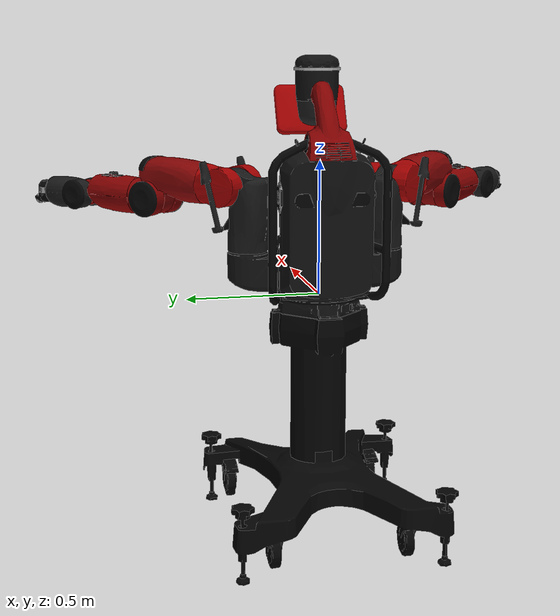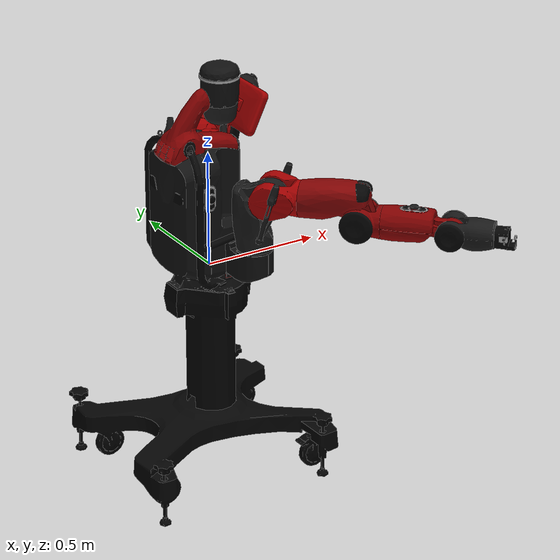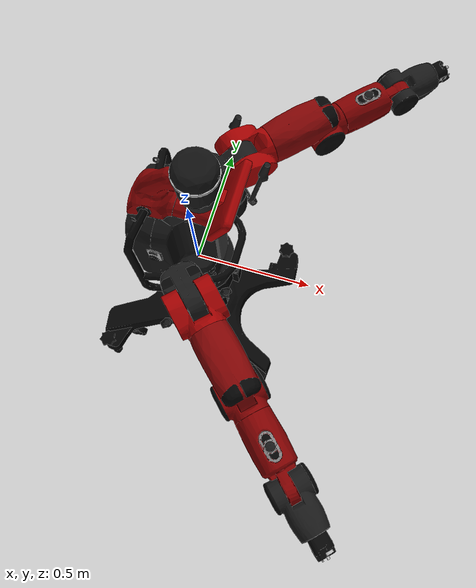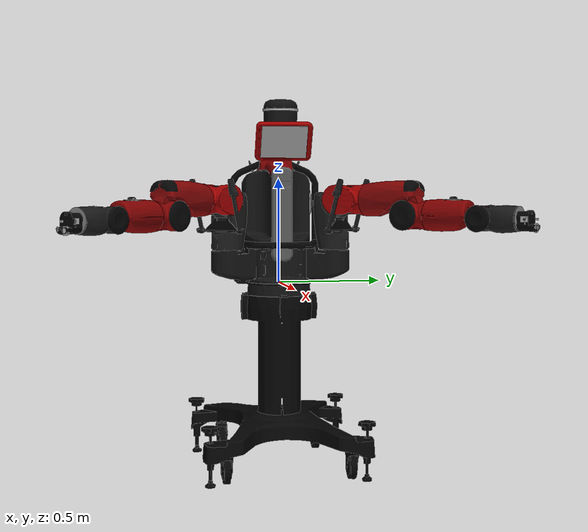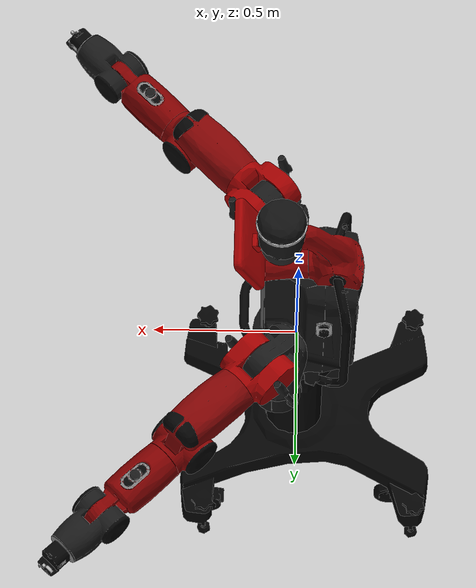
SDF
<sdf version='1.7'>
  <model name='baxter'>
    <link name='base'>
      <inertial>
        <pose>0 -0 3e-06 0 -0 0</pose>
        <mass>96.2011</mass>
        <inertia>
          <ixx>6.91297</ixx>
          <ixy>0.00068017</ixy>
          <ixz>0.64779</ixz>
          <iyy>7.74978</iyy>
          <iyz>0.00434511</iyz>
          <izz>5.76418</izz>
        </inertia>
      </inertial>
      <collision name='base_fixed_joint_lump__collision_head_link_1_collision'>
        <pose>0.04 -0.04 0.75 0 -0 0</pose>
        <geometry>
          <sphere>
            <radius>0.22</radius>
          </sphere>
        </geometry>
      </collision>
      <collision name='base_fixed_joint_lump__collision_head_link_2_collision_1'>
        <pose>0.04 0.04 0.75 0 -0 0</pose>
        <geometry>
          <sphere>
            <radius>0.22</radius>
          </sphere>
        </geometry>
      </collision>
      <collision name='base_fixed_joint_lump__torso_collision_2'>
        <pose>0 0 0 0 -0 0</pose>
        <geometry>
          <mesh>
            <scale>1 1 1</scale>
            <uri>model://baxter_description/meshes/torso/base_link_collision.DAE</uri>
          </mesh>
        </geometry>
        <surface>
          <contact>
            <ode/>
          </contact>
          <friction>
            <ode/>
          </friction>
        </surface>
      </collision>
      <collision name='base_fixed_joint_lump__pedestal_collision_3'>
        <pose>0 0 0 0 -0 0</pose>
        <geometry>
          <mesh>
            <scale>1 1 1</scale>
            <uri>model://baxter_description/meshes/base/pedestal_link_collision.DAE</uri>
          </mesh>
        </geometry>
      </collision>
      <collision name='base_fixed_joint_lump__sonar_ring_collision_4'>
        <pose>0.0947 0 0.817 0 -0 0</pose>
        <geometry>
          <sphere>
            <radius>0.001</radius>
          </sphere>
        </geometry>
        <surface>
          <contact>
            <ode/>
          </contact>
          <friction>
            <ode/>
          </friction>
        </surface>
      </collision>
      <visual name='base_fixed_joint_lump__collision_head_link_1_visual'>
        <pose>0.11 0 0.75 0 -0 0</pose>
        <geometry>
          <sphere>
            <radius>0.001</radius>
          </sphere>
        </geometry>
      </visual>
      <visual name='base_fixed_joint_lump__collision_head_link_2_visual_1'>
        <pose>0.11 0 0.75 0 -0 0</pose>
        <geometry>
          <sphere>
            <radius>0.001</radius>
          </sphere>
        </geometry>
      </visual>
      <visual name='base_fixed_joint_lump__torso_visual_2'>
        <pose>0 0 0 0 -0 0</pose>
        <geometry>
          <mesh>
            <scale>1 1 1</scale>
            <uri>model://baxter_description/meshes/torso/base_link.DAE</uri>
          </mesh>
        </geometry>
      </visual>
      <visual name='base_fixed_joint_lump__pedestal_visual_3'>
        <pose>0 0 0 0 -0 0</pose>
        <geometry>
          <mesh>
            <scale>1 1 1</scale>
            <uri>model://baxter_description/meshes/base/PEDESTAL.DAE</uri>
          </mesh>
        </geometry>
      </visual>
      <visual name='base_fixed_joint_lump__sonar_ring_visual_4'>
        <pose>0.06 0 0.82653 0 -0 0</pose>
        <geometry>
          <cylinder>
            <length>0.01</length>
            <radius>0.085</radius>
          </cylinder>
        </geometry>
      </visual>
      <self_collide>1</self_collide>
      <sensor name='sonar' type='ray'>
        <ray>
          <scan>
            <horizontal>
              <samples>12</samples>
              <resolution>1</resolution>
              <min_angle>-3.14</min_angle>
              <max_angle>3.14</max_angle>
            </horizontal>
            <vertical>
              <samples>2</samples>
              <resolution>1</resolution>
              <min_angle>-0.001</min_angle>
              <max_angle>0</max_angle>
            </vertical>
          </scan>
          <range>
            <min>0.05</min>
            <max>50</max>
          </range>
        </ray>
        <plugin name='sonar_plugin' filename='libgazebo_ros_block_laser.so'>
          <gaussianNoise>0.00</gaussianNoise>
          <alwaysOn>1</alwaysOn>
          <updateRate>100.0</updateRate>
          <topicName>/robot/sonar/head_sonar/state</topicName>
          <frameName>sonar_ring</frameName>
        </plugin>
        <always_on>1</always_on>
        <update_rate>100</update_rate>
        <pose>0.0947 0 0.817 0 -0 0</pose>
      </sensor>
    </link>
    <joint name='head_pan' type='revolute'>
      <pose relative_to='base'>0.06 0 0.686 0 -0 0</pose>
      <parent>base</parent>
      <child>head</child>
      <axis>
        <xyz>0 0 1</xyz>
        <limit>
          <lower>-1.5708</lower>
          <upper>1.5708</upper>
          <effort>50000</effort>
          <velocity>10000</velocity>
        </limit>
        <dynamics>
          <damping>0.7</damping>
          <friction>0</friction>
          <spring_reference>0</spring_reference>
          <spring_stiffness>0</spring_stiffness>
        </dynamics>
      </axis>
      <physics>
        <ode>
          <implicit_spring_damper>1</implicit_spring_damper>
          <cfm_damping>1</cfm_damping>
          <limit>
            <cfm>0</cfm>
            <erp>0.2</erp>
          </limit>
        </ode>
      </physics>
    </joint>
    <link name='head'>
      <pose relative_to='head_pan'>0 0 0 0 -0 0</pose>
      <inertial>
        <pose>0.054677 0 5e-06 0 -0 0</pose>
        <mass>0.988238</mass>
        <inertia>
          <ixx>0.00620194</ixx>
          <ixy>0.000202093</ixy>
          <ixz>0.000495898</ixz>
          <iyy>0.010977</iyy>
          <iyz>-0.00109806</iyz>
          <izz>0.00983914</izz>
        </inertia>
      </inertial>
      <collision name='head_collision'>
        <pose>0 0 0 0 -0 0</pose>
        <geometry>
          <sphere>
            <radius>0.001</radius>
          </sphere>
        </geometry>
      </collision>
      <collision name='head_fixed_joint_lump__screen_collision_1'>
        <pose>0.1227 0 0 1.75057 -0 1.5708</pose>
        <geometry>
          <sphere>
            <radius>0.001</radius>
          </sphere>
        </geometry>
      </collision>
      <visual name='head_visual'>
        <pose>0 0 0.00953 0 -0 0</pose>
        <geometry>
          <mesh>
            <scale>1 1 1</scale>
            <uri>model://baxter_description/meshes/head/H0.DAE</uri>
          </mesh>
        </geometry>
      </visual>
      <visual name='head_fixed_joint_lump__screen_visual_1'>
        <pose>0.086855 0 -0.003172 1.5708 0.179774 0</pose>
        <geometry>
          <mesh>
            <scale>1 1 1</scale>
            <uri>model://baxter_description/meshes/head/H1.DAE</uri>
          </mesh>
        </geometry>
      </visual>
      <visual name='head_fixed_joint_lump__display_visual_2'>
        <pose>0.119839 0 -0.015742 2.01237 -0 1.5708</pose>
        <geometry>
          <box>
            <size>0.218 0.16 0.001</size>
          </box>
        </geometry>
        <plugin name='screen_video_controller' filename='libgazebo_ros_video.so'>
          <height>600</height>
          <width>1024</width>
          <topicName>/robot/xdisplay</topicName>
        </plugin>
      </visual>
      <sensor name='head_camera' type='camera'>
        <update_rate>30</update_rate>
        <camera name='head_camera'>
          <pose>0 0.21 0 0 -0.8 -1.5708</pose>
          <horizontal_fov>1.39626</horizontal_fov>
          <image>
            <width>800</width>
            <height>800</height>
            <format>R8G8B8</format>
          </image>
          <clip>
            <near>0.02</near>
            <far>300</far>
          </clip>
          <noise>
            <type>gaussian</type>
            <mean>0</mean>
            <stddev>0.007</stddev>
          </noise>
        </camera>
        <plugin name='camera_controller' filename='libgazebo_ros_camera.so'>
          <alwaysOn>1</alwaysOn>
          <updateRate>0.0</updateRate>
          <cameraName>head_camera</cameraName>
          <imageTopicName>image</imageTopicName>
          <cameraInfoTopicName>camera_info</cameraInfoTopicName>
          <frameName>head_camera</frameName>
          <hackBaseline>0.07</hackBaseline>
          <distortionK1>0.0</distortionK1>
          <distortionK2>0.0</distortionK2>
          <distortionK3>0.0</distortionK3>
          <distortionT1>0.0</distortionT1>
          <distortionT2>0.0</distortionT2>
          <robotNamespace>/cameras</robotNamespace>
        </plugin>
        <pose>0.12839 0 0.06368 1.75057 -0 1.5708</pose>
      </sensor>
    </link>
    <joint name='left_s0' type='revolute'>
      <pose relative_to='base'>0.064027 0.259027 0.129626 0 -0 0.7854</pose>
      <parent>base</parent>
      <child>left_upper_shoulder</child>
      <axis>
        <xyz>0 0 1</xyz>
        <limit>
          <lower>-1.70168</lower>
          <upper>1.70168</upper>
          <effort>50</effort>
          <velocity>1.5</velocity>
        </limit>
        <dynamics>
          <damping>0.7</damping>
          <friction>0</friction>
          <spring_reference>0</spring_reference>
          <spring_stiffness>0</spring_stiffness>
        </dynamics>
      </axis>
      <physics>
        <ode>
          <implicit_spring_damper>1</implicit_spring_damper>
          <cfm_damping>1</cfm_damping>
          <limit>
            <cfm>0</cfm>
            <erp>0.2</erp>
          </limit>
        </ode>
      </physics>
    </joint>
    <link name='left_upper_shoulder'>
      <pose relative_to='left_s0'>0 0 0 0 -0 0</pose>
      <inertial>
        <pose>0.01783 0.00086 0.19127 0 -0 0</pose>
        <mass>5.70044</mass>
        <inertia>
          <ixx>0.047091</ixx>
          <ixy>0.000127876</ixy>
          <ixz>0.0061487</ixz>
          <iyy>0.0376698</iyy>
          <iyz>0.000780869</iyz>
          <izz>0.0359599</izz>
        </inertia>
      </inertial>
      <collision name='left_upper_shoulder_collision'>
        <pose>0 0 0.1361 0 -0 0</pose>
        <geometry>
          <cylinder>
            <length>0.2722</length>
            <radius>0.06</radius>
          </cylinder>
        </geometry>
      </collision>
      <visual name='left_upper_shoulder_visual'>
        <pose>0 0 0 0 -0 0</pose>
        <geometry>
          <mesh>
            <scale>1 1 1</scale>
            <uri>model://baxter_description/meshes/upper_shoulder/S0.DAE</uri>
          </mesh>
        </geometry>
      </visual>
    </link>
    <joint name='left_s1' type='revolute'>
      <pose relative_to='left_upper_shoulder'>0.069 0 0.27035 -1.5708 0 0</pose>
      <parent>left_upper_shoulder</parent>
      <child>left_lower_shoulder</child>
      <axis>
        <xyz>0 0 1</xyz>
        <limit>
          <lower>-2.147</lower>
          <upper>1.047</upper>
          <effort>100</effort>
          <velocity>1.5</velocity>
        </limit>
        <dynamics>
          <damping>0.7</damping>
          <friction>0</friction>
          <spring_reference>0</spring_reference>
          <spring_stiffness>0</spring_stiffness>
        </dynamics>
      </axis>
      <physics>
        <ode>
          <implicit_spring_damper>1</implicit_spring_damper>
          <cfm_damping>1</cfm_damping>
          <limit>
            <cfm>0</cfm>
            <erp>0.2</erp>
          </limit>
        </ode>
      </physics>
    </joint>
    <link name='left_lower_shoulder'>
      <pose relative_to='left_s1'>0 0 0 0 -0 0</pose>
      <inertial>
        <pose>0.068451 0.00269 -0.00529 0 -0 0</pose>
        <mass>3.22708</mass>
        <inertia>
          <ixx>0.0117521</ixx>
          <ixy>-0.000300954</ixy>
          <ixz>0.00207674</ixz>
          <iyy>0.0278861</iyy>
          <iyz>-0.000188219</iyz>
          <izz>0.0207877</izz>
        </inertia>
      </inertial>
      <collision name='left_lower_shoulder_collision'>
        <pose>0 0 0 0 -0 0</pose>
        <geometry>
          <cylinder>
            <length>0.12</length>
            <radius>0.06</radius>
          </cylinder>
        </geometry>
      </collision>
      <collision name='left_lower_shoulder_fixed_joint_lump__left_upper_elbow_visual_collision_1'>
        <pose>0.2435 -0 0 1.5708 -0 1.5708</pose>
        <geometry>
          <cylinder>
            <length>0.273</length>
            <radius>0.06</radius>
          </cylinder>
        </geometry>
      </collision>
      <visual name='left_lower_shoulder_visual'>
        <pose>0 0 0 0 -0 0</pose>
        <geometry>
          <mesh>
            <scale>1 1 1</scale>
            <uri>model://baxter_description/meshes/lower_shoulder/S1.DAE</uri>
          </mesh>
        </geometry>
      </visual>
    </link>
    <joint name='left_e0' type='revolute'>
      <pose relative_to='left_lower_shoulder'>0.102 0 0 1.5708 -0 1.5708</pose>
      <parent>left_lower_shoulder</parent>
      <child>left_upper_elbow</child>
      <axis>
        <xyz>0 0 1</xyz>
        <limit>
          <lower>-3.05418</lower>
          <upper>3.05418</upper>
          <effort>50</effort>
          <velocity>1.5</velocity>
        </limit>
        <dynamics>
          <damping>0.7</damping>
          <friction>0</friction>
          <spring_reference>0</spring_reference>
          <spring_stiffness>0</spring_stiffness>
        </dynamics>
      </axis>
      <physics>
        <ode>
          <implicit_spring_damper>1</implicit_spring_damper>
          <cfm_damping>1</cfm_damping>
          <limit>
            <cfm>0</cfm>
            <erp>0.2</erp>
          </limit>
        </ode>
      </physics>
    </joint>
    <link name='left_upper_elbow'>
      <pose relative_to='left_e0'>0 0 0 0 -0 0</pose>
      <inertial>
        <pose>-0.00276 0.00132 0.18086 0 -0 0</pose>
        <mass>4.31272</mass>
        <inertia>
          <ixx>0.0266173</ixx>
          <ixy>0.000292706</ixy>
          <ixz>0.0039219</ixz>
          <iyy>0.0284436</iyy>
          <iyz>0.00108389</iyz>
          <izz>0.0124801</izz>
        </inertia>
      </inertial>
      <collision name='left_upper_elbow_collision'>
        <pose>0 0 -0.0535 0 -0 0</pose>
        <geometry>
          <cylinder>
            <length>0.107</length>
            <radius>0.06</radius>
          </cylinder>
        </geometry>
      </collision>
      <visual name='left_upper_elbow_visual'>
        <pose>0 0 0 0 -0 0</pose>
        <geometry>
          <mesh>
            <scale>1 1 1</scale>
            <uri>model://baxter_description/meshes/upper_elbow/E0.DAE</uri>
          </mesh>
        </geometry>
      </visual>
    </link>
    <joint name='left_e1' type='revolute'>
      <pose relative_to='left_upper_elbow'>0.069 0 0.26242 -1.5708 -1.5708 0</pose>
      <parent>left_upper_elbow</parent>
      <child>left_lower_elbow</child>
      <axis>
        <xyz>0 0 1</xyz>
        <limit>
          <lower>-0.05</lower>
          <upper>2.618</upper>
          <effort>50</effort>
          <velocity>1.5</velocity>
        </limit>
        <dynamics>
          <damping>0.7</damping>
          <friction>0</friction>
          <spring_reference>0</spring_reference>
          <spring_stiffness>0</spring_stiffness>
        </dynamics>
      </axis>
      <physics>
        <ode>
          <implicit_spring_damper>1</implicit_spring_damper>
          <cfm_damping>1</cfm_damping>
          <limit>
            <cfm>0</cfm>
            <erp>0.2</erp>
          </limit>
        </ode>
      </physics>
    </joint>
    <link name='left_lower_elbow'>
      <pose relative_to='left_e1'>0 0 0 0 -0 0</pose>
      <inertial>
        <pose>0.026113 0.00159 -0.011169 0 -0 0</pose>
        <mass>2.07216</mass>
        <inertia>
          <ixx>0.00711585</ixx>
          <ixy>0.000360372</ixy>
          <ixz>0.00074588</ixz>
          <iyy>0.0131827</iyy>
          <iyz>-0.000196632</iyz>
          <izz>0.00926891</izz>
        </inertia>
      </inertial>
      <collision name='left_lower_elbow_collision'>
        <pose>0 0 0 0 -0 0</pose>
        <geometry>
          <cylinder>
            <length>0.1</length>
            <radius>0.06</radius>
          </cylinder>
        </geometry>
      </collision>
      <collision name='left_lower_elbow_fixed_joint_lump__left_upper_forearm_visual_collision_1'>
        <pose>0.224 -0 0 1.5708 -0 1.5708</pose>
        <geometry>
          <cylinder>
            <length>0.272</length>
            <radius>0.06</radius>
          </cylinder>
        </geometry>
      </collision>
      <visual name='left_lower_elbow_visual'>
        <pose>0 0 0 0 -0 0</pose>
        <geometry>
          <mesh>
            <scale>1 1 1</scale>
            <uri>model://baxter_description/meshes/lower_elbow/E1.DAE</uri>
          </mesh>
        </geometry>
      </visual>
    </link>
    <joint name='left_w0' type='revolute'>
      <pose relative_to='left_lower_elbow'>0.10359 0 0 1.5708 -0 1.5708</pose>
      <parent>left_lower_elbow</parent>
      <child>left_upper_forearm</child>
      <axis>
        <xyz>0 0 1</xyz>
        <limit>
          <lower>-3.059</lower>
          <upper>3.059</upper>
          <effort>15</effort>
          <velocity>4</velocity>
        </limit>
        <dynamics>
          <damping>0.7</damping>
          <friction>0</friction>
          <spring_reference>0</spring_reference>
          <spring_stiffness>0</spring_stiffness>
        </dynamics>
      </axis>
      <physics>
        <ode>
          <implicit_spring_damper>1</implicit_spring_damper>
          <cfm_damping>1</cfm_damping>
          <limit>
            <cfm>0</cfm>
            <erp>0.2</erp>
          </limit>
        </ode>
      </physics>
    </joint>
    <link name='left_upper_forearm'>
      <pose relative_to='left_w0'>0 0 0 0 -0 0</pose>
      <inertial>
        <pose>-0.001682 0.0046 0.139519 0 -0 0</pose>
        <mass>2.24675</mass>
        <inertia>
          <ixx>0.0166775</ixx>
          <ixy>0.000184012</ixy>
          <ixz>0.000186469</ixz>
          <iyy>0.0167549</iyy>
          <iyz>-0.000647332</iyz>
          <izz>0.00374662</izz>
        </inertia>
      </inertial>
      <collision name='left_upper_forearm_collision'>
        <pose>0 0 -0.044 0 -0 0</pose>
        <geometry>
          <cylinder>
            <length>0.088</length>
            <radius>0.06</radius>
          </cylinder>
        </geometry>
      </collision>
      <visual name='left_upper_forearm_visual'>
        <pose>0 0 0 0 -0 0</pose>
        <geometry>
          <mesh>
            <scale>1 1 1</scale>
            <uri>model://baxter_description/meshes/upper_forearm/W0.DAE</uri>
          </mesh>
        </geometry>
      </visual>
    </link>
    <joint name='left_w1' type='revolute'>
      <pose relative_to='left_upper_forearm'>0.01 0 0.2707 -1.5708 -1.5708 0</pose>
      <parent>left_upper_forearm</parent>
      <child>left_lower_forearm</child>
      <axis>
        <xyz>0 0 1</xyz>
        <limit>
          <lower>-1.5708</lower>
          <upper>2.094</upper>
          <effort>15</effort>
          <velocity>4</velocity>
        </limit>
        <dynamics>
          <damping>0.7</damping>
          <friction>0</friction>
          <spring_reference>0</spring_reference>
          <spring_stiffness>0</spring_stiffness>
        </dynamics>
      </axis>
      <physics>
        <ode>
          <implicit_spring_damper>1</implicit_spring_damper>
          <cfm_damping>1</cfm_damping>
          <limit>
            <cfm>0</cfm>
            <erp>0.2</erp>
          </limit>
        </ode>
      </physics>
    </joint>
    <link name='left_lower_forearm'>
      <pose relative_to='left_w1'>0 0 0 0 -0 0</pose>
      <inertial>
        <pose>0.06041 0.00697 0.006 0 -0 0</pose>
        <mass>1.60979</mass>
        <inertia>
          <ixx>0.00387607</ixx>
          <ixy>-0.000443848</ixy>
          <ixz>-0.00021115</ixz>
          <iyy>0.00700538</iyy>
          <iyz>0.000153481</iyz>
          <izz>0.00552755</izz>
        </inertia>
      </inertial>
      <collision name='left_lower_forearm_collision'>
        <pose>0 0 0 0 -0 0</pose>
        <geometry>
          <cylinder>
            <length>0.1</length>
            <radius>0.06</radius>
          </cylinder>
        </geometry>
      </collision>
      <visual name='left_lower_forearm_visual'>
        <pose>0 0 0 0 -0 0</pose>
        <geometry>
          <mesh>
            <scale>1 1 1</scale>
            <uri>model://baxter_description/meshes/lower_forearm/W1.DAE</uri>
          </mesh>
        </geometry>
      </visual>
    </link>
    <joint name='left_w2' type='revolute'>
      <pose relative_to='left_lower_forearm'>0.115975 0 0 1.5708 -0 1.5708</pose>
      <parent>left_lower_forearm</parent>
      <child>left_wrist</child>
      <axis>
        <xyz>0 0 1</xyz>
        <limit>
          <lower>-3.059</lower>
          <upper>3.059</upper>
          <effort>15</effort>
          <velocity>4</velocity>
        </limit>
        <dynamics>
          <damping>0.7</damping>
          <friction>0</friction>
          <spring_reference>0</spring_reference>
          <spring_stiffness>0</spring_stiffness>
        </dynamics>
      </axis>
      <physics>
        <ode>
          <implicit_spring_damper>1</implicit_spring_damper>
          <cfm_damping>1</cfm_damping>
          <limit>
            <cfm>0</cfm>
            <erp>0.2</erp>
          </limit>
        </ode>
      </physics>
    </joint>
    <link name='left_wrist'>
      <pose relative_to='left_w2'>0 0 0 0 -0 0</pose>
      <inertial>
        <pose>0.005152 0.000957 0.046743 0 -0 0</pose>
        <mass>0.54278</mass>
        <inertia>
          <ixx>0.00121873</ixx>
          <ixy>8.12598e-06</ixy>
          <ixz>-6.62108e-05</ixz>
          <iyy>0.00128054</iyy>
          <iyz>4.75609e-06</iyz>
          <izz>0.000555294</izz>
        </inertia>
      </inertial>
      <collision name='left_wrist_collision'>
        <pose>0 0 0 0 -0 0</pose>
        <geometry>
          <cylinder>
            <length>0.165</length>
            <radius>0.06</radius>
          </cylinder>
        </geometry>
      </collision>
      <collision name='left_wrist_fixed_joint_lump__left_hand_collision_1'>
        <pose>0 0 0.09035 0 -0 0</pose>
        <geometry>
          <cylinder>
            <length>0.0464</length>
            <radius>0.04</radius>
          </cylinder>
        </geometry>
      </collision>
      <visual name='left_wrist_visual'>
        <pose>0 0 0 0 -0 0</pose>
        <geometry>
          <mesh>
            <scale>1 1 1</scale>
            <uri>model://baxter_description/meshes/wrist/W2.DAE</uri>
          </mesh>
        </geometry>
      </visual>
      <visual name='left_wrist_fixed_joint_lump__left_gripper_base_visual_1'>
        <pose>0 0 0.09355 0 -0 0</pose>
        <geometry>
          <box>
            <size>0.025 0.075 0.035</size>
          </box>
        </geometry>
      </visual>
      <visual name='left_wrist_fixed_joint_lump__left_gripper_visual_2'>
        <pose>0 0 0.13855 0 -0 0</pose>
        <geometry>
          <box>
            <size>0.01 0.01 0.01</size>
          </box>
        </geometry>
      </visual>
      <visual name='left_wrist_fixed_joint_lump__left_hand_accelerometer_visual_3'>
        <pose>0.00198 0.000133 0.09895 0 -0 0</pose>
        <geometry>
          <box>
            <size>0.01 0.01 0.01</size>
          </box>
        </geometry>
      </visual>
      <visual name='left_wrist_fixed_joint_lump__left_hand_camera_visual_4'>
        <pose>0.03825 0.012 0.128905 0 0 -1.5708</pose>
        <geometry>
          <cylinder>
            <length>0.01</length>
            <radius>0.02</radius>
          </cylinder>
        </geometry>
      </visual>
      <visual name='left_wrist_fixed_joint_lump__left_hand_range_visual_5'>
        <pose>0.032 -0.020245 0.14235 -1.5708 -1.5708 0</pose>
        <geometry>
          <box>
            <size>0.005 0.02 0.005</size>
          </box>
        </geometry>
      </visual>
      <sensor name='left_hand_camera' type='camera'>
        <update_rate>30</update_rate>
        <camera name='left_hand_camera'>
          <pose>0 0 0 1.5708 -1.5708 0</pose>
          <horizontal_fov>1.39626</horizontal_fov>
          <image>
            <width>800</width>
            <height>800</height>
            <format>R8G8B8</format>
          </image>
          <clip>
            <near>0.02</near>
            <far>300</far>
          </clip>
          <noise>
            <type>gaussian</type>
            <mean>0</mean>
            <stddev>0.007</stddev>
          </noise>
        </camera>
        <plugin name='camera_controller' filename='libgazebo_ros_camera.so'>
          <alwaysOn>1</alwaysOn>
          <updateRate>0.0</updateRate>
          <cameraName>left_hand_camera</cameraName>
          <imageTopicName>image</imageTopicName>
          <cameraInfoTopicName>camera_info</cameraInfoTopicName>
          <frameName>left_hand_camera</frameName>
          <hackBaseline>0.07</hackBaseline>
          <distortionK1>0.0</distortionK1>
          <distortionK2>0.0</distortionK2>
          <distortionK3>0.0</distortionK3>
          <distortionT1>0.0</distortionT1>
          <distortionT2>0.0</distortionT2>
          <robotNamespace>/cameras</robotNamespace>
        </plugin>
        <pose>0.03825 0.012 0.128905 0 0 -1.5708</pose>
      </sensor>
      <sensor name='ir_left' type='ray'>
        <ray>
          <scan>
            <horizontal>
              <samples>1</samples>
              <resolution>1</resolution>
              <min_angle>-0.5</min_angle>
              <max_angle>0.5</max_angle>
            </horizontal>
          </scan>
          <range>
            <min>0.004</min>
            <max>0.4</max>
          </range>
        </ray>
        <plugin name='plugin_4' filename='libgazebo_ros_laser.so'>
          <gaussianNoise>0.005</gaussianNoise>
          <alwaysOn>1</alwaysOn>
          <updateRate>100</updateRate>
          <topicName>/sim/laserscan/left_hand_range/state</topicName>
          <frameName>left_hand_range</frameName>
        </plugin>
        <always_on>1</always_on>
        <update_rate>100</update_rate>
        <pose>0.032 -0.020245 0.14235 3.14159 -1.57079 1.57079</pose>
      </sensor>
    </link>
    <joint name='right_s0' type='revolute'>
      <pose relative_to='base'>0.064027 -0.259027 0.129626 0 0 -0.7854</pose>
      <parent>base</parent>
      <child>right_upper_shoulder</child>
      <axis>
        <xyz>0 0 1</xyz>
        <limit>
          <lower>-1.70168</lower>
          <upper>1.70168</upper>
          <effort>50</effort>
          <velocity>1.5</velocity>
        </limit>
        <dynamics>
          <damping>0.7</damping>
          <friction>0</friction>
          <spring_reference>0</spring_reference>
          <spring_stiffness>0</spring_stiffness>
        </dynamics>
      </axis>
      <physics>
        <ode>
          <implicit_spring_damper>1</implicit_spring_damper>
          <cfm_damping>1</cfm_damping>
          <limit>
            <cfm>0</cfm>
            <erp>0.2</erp>
          </limit>
        </ode>
      </physics>
    </joint>
    <link name='right_upper_shoulder'>
      <pose relative_to='right_s0'>0 0 0 0 -0 0</pose>
      <inertial>
        <pose>0.01783 0.00086 0.19127 0 -0 0</pose>
        <mass>5.70044</mass>
        <inertia>
          <ixx>0.047091</ixx>
          <ixy>0.000127876</ixy>
          <ixz>0.0061487</ixz>
          <iyy>0.0376698</iyy>
          <iyz>0.000780869</iyz>
          <izz>0.0359599</izz>
        </inertia>
      </inertial>
      <collision name='right_upper_shoulder_collision'>
        <pose>0 0 0.1361 0 -0 0</pose>
        <geometry>
          <cylinder>
            <length>0.2722</length>
            <radius>0.06</radius>
          </cylinder>
        </geometry>
      </collision>
      <visual name='right_upper_shoulder_visual'>
        <pose>0 0 0 0 -0 0</pose>
        <geometry>
          <mesh>
            <scale>1 1 1</scale>
            <uri>model://baxter_description/meshes/upper_shoulder/S0.DAE</uri>
          </mesh>
        </geometry>
      </visual>
    </link>
    <joint name='right_s1' type='revolute'>
      <pose relative_to='right_upper_shoulder'>0.069 0 0.27035 -1.5708 0 0</pose>
      <parent>right_upper_shoulder</parent>
      <child>right_lower_shoulder</child>
      <axis>
        <xyz>0 0 1</xyz>
        <limit>
          <lower>-2.147</lower>
          <upper>1.047</upper>
          <effort>100</effort>
          <velocity>1.5</velocity>
        </limit>
        <dynamics>
          <damping>0.7</damping>
          <friction>0</friction>
          <spring_reference>0</spring_reference>
          <spring_stiffness>0</spring_stiffness>
        </dynamics>
      </axis>
      <physics>
        <ode>
          <implicit_spring_damper>1</implicit_spring_damper>
          <cfm_damping>1</cfm_damping>
          <limit>
            <cfm>0</cfm>
            <erp>0.2</erp>
          </limit>
        </ode>
      </physics>
    </joint>
    <link name='right_lower_shoulder'>
      <pose relative_to='right_s1'>0 0 0 0 -0 0</pose>
      <inertial>
        <pose>0.068451 0.00269 -0.00529 0 -0 0</pose>
        <mass>3.22708</mass>
        <inertia>
          <ixx>0.0117521</ixx>
          <ixy>-0.000300954</ixy>
          <ixz>0.00207674</ixz>
          <iyy>0.0278861</iyy>
          <iyz>-0.000188219</iyz>
          <izz>0.0207877</izz>
        </inertia>
      </inertial>
      <collision name='right_lower_shoulder_collision'>
        <pose>0 0 0 0 -0 0</pose>
        <geometry>
          <cylinder>
            <length>0.12</length>
            <radius>0.06</radius>
          </cylinder>
        </geometry>
      </collision>
      <collision name='right_lower_shoulder_fixed_joint_lump__right_upper_elbow_visual_collision_1'>
        <pose>0.2435 -0 0 1.5708 -0 1.5708</pose>
        <geometry>
          <cylinder>
            <length>0.273</length>
            <radius>0.06</radius>
          </cylinder>
        </geometry>
      </collision>
      <visual name='right_lower_shoulder_visual'>
        <pose>0 0 0 0 -0 0</pose>
        <geometry>
          <mesh>
            <scale>1 1 1</scale>
            <uri>model://baxter_description/meshes/lower_shoulder/S1.DAE</uri>
          </mesh>
        </geometry>
      </visual>
    </link>
    <joint name='right_e0' type='revolute'>
      <pose relative_to='right_lower_shoulder'>0.102 0 0 1.5708 -0 1.5708</pose>
      <parent>right_lower_shoulder</parent>
      <child>right_upper_elbow</child>
      <axis>
        <xyz>0 0 1</xyz>
        <limit>
          <lower>-3.05418</lower>
          <upper>3.05418</upper>
          <effort>50</effort>
          <velocity>1.5</velocity>
        </limit>
        <dynamics>
          <damping>0.7</damping>
          <friction>0</friction>
          <spring_reference>0</spring_reference>
          <spring_stiffness>0</spring_stiffness>
        </dynamics>
      </axis>
      <physics>
        <ode>
          <implicit_spring_damper>1</implicit_spring_damper>
          <cfm_damping>1</cfm_damping>
          <limit>
            <cfm>0</cfm>
            <erp>0.2</erp>
          </limit>
        </ode>
      </physics>
    </joint>
    <link name='right_upper_elbow'>
      <pose relative_to='right_e0'>0 0 0 0 -0 0</pose>
      <inertial>
        <pose>-0.00276 0.00132 0.18086 0 -0 0</pose>
        <mass>4.31272</mass>
        <inertia>
          <ixx>0.0266173</ixx>
          <ixy>0.000292706</ixy>
          <ixz>0.0039219</ixz>
          <iyy>0.0284436</iyy>
          <iyz>0.00108389</iyz>
          <izz>0.0124801</izz>
        </inertia>
      </inertial>
      <collision name='right_upper_elbow_collision'>
        <pose>0 0 -0.0535 0 -0 0</pose>
        <geometry>
          <cylinder>
            <length>0.107</length>
            <radius>0.06</radius>
          </cylinder>
        </geometry>
      </collision>
      <visual name='right_upper_elbow_visual'>
        <pose>0 0 0 0 -0 0</pose>
        <geometry>
          <mesh>
            <scale>1 1 1</scale>
            <uri>model://baxter_description/meshes/upper_elbow/E0.DAE</uri>
          </mesh>
        </geometry>
      </visual>
    </link>
    <joint name='right_e1' type='revolute'>
      <pose relative_to='right_upper_elbow'>0.069 0 0.26242 -1.5708 -1.5708 0</pose>
      <parent>right_upper_elbow</parent>
      <child>right_lower_elbow</child>
      <axis>
        <xyz>0 0 1</xyz>
        <limit>
          <lower>-0.05</lower>
          <upper>2.618</upper>
          <effort>50</effort>
          <velocity>1.5</velocity>
        </limit>
        <dynamics>
          <damping>0.7</damping>
          <friction>0</friction>
          <spring_reference>0</spring_reference>
          <spring_stiffness>0</spring_stiffness>
        </dynamics>
      </axis>
      <physics>
        <ode>
          <implicit_spring_damper>1</implicit_spring_damper>
          <cfm_damping>1</cfm_damping>
          <limit>
            <cfm>0</cfm>
            <erp>0.2</erp>
          </limit>
        </ode>
      </physics>
    </joint>
    <link name='right_lower_elbow'>
      <pose relative_to='right_e1'>0 0 0 0 -0 0</pose>
      <inertial>
        <pose>0.026113 0.00159 -0.011169 0 -0 0</pose>
        <mass>2.07216</mass>
        <inertia>
          <ixx>0.00711585</ixx>
          <ixy>0.000360372</ixy>
          <ixz>0.00074588</ixz>
          <iyy>0.0131827</iyy>
          <iyz>-0.000196632</iyz>
          <izz>0.00926891</izz>
        </inertia>
      </inertial>
      <collision name='right_lower_elbow_collision'>
        <pose>0 0 0 0 -0 0</pose>
        <geometry>
          <cylinder>
            <length>0.1</length>
            <radius>0.06</radius>
          </cylinder>
        </geometry>
      </collision>
      <collision name='right_lower_elbow_fixed_joint_lump__right_upper_forearm_visual_collision_1'>
        <pose>0.224 -0 0 1.5708 -0 1.5708</pose>
        <geometry>
          <cylinder>
            <length>0.272</length>
            <radius>0.06</radius>
          </cylinder>
        </geometry>
      </collision>
      <visual name='right_lower_elbow_visual'>
        <pose>0 0 0 0 -0 0</pose>
        <geometry>
          <mesh>
            <scale>1 1 1</scale>
            <uri>model://baxter_description/meshes/lower_elbow/E1.DAE</uri>
          </mesh>
        </geometry>
      </visual>
    </link>
    <joint name='right_w0' type='revolute'>
      <pose relative_to='right_lower_elbow'>0.10359 0 0 1.5708 -0 1.5708</pose>
      <parent>right_lower_elbow</parent>
      <child>right_upper_forearm</child>
      <axis>
        <xyz>0 0 1</xyz>
        <limit>
          <lower>-3.059</lower>
          <upper>3.059</upper>
          <effort>15</effort>
          <velocity>4</velocity>
        </limit>
        <dynamics>
          <damping>0.7</damping>
          <friction>0</friction>
          <spring_reference>0</spring_reference>
          <spring_stiffness>0</spring_stiffness>
        </dynamics>
      </axis>
      <physics>
        <ode>
          <implicit_spring_damper>1</implicit_spring_damper>
          <cfm_damping>1</cfm_damping>
          <limit>
            <cfm>0</cfm>
            <erp>0.2</erp>
          </limit>
        </ode>
      </physics>
    </joint>
    <link name='right_upper_forearm'>
      <pose relative_to='right_w0'>0 0 0 0 -0 0</pose>
      <inertial>
        <pose>-0.001682 0.0046 0.139519 0 -0 0</pose>
        <mass>2.24675</mass>
        <inertia>
          <ixx>0.0166775</ixx>
          <ixy>0.000184012</ixy>
          <ixz>0.000186469</ixz>
          <iyy>0.0167549</iyy>
          <iyz>-0.000647332</iyz>
          <izz>0.00374662</izz>
        </inertia>
      </inertial>
      <collision name='right_upper_forearm_collision'>
        <pose>0 0 -0.044 0 -0 0</pose>
        <geometry>
          <cylinder>
            <length>0.088</length>
            <radius>0.06</radius>
          </cylinder>
        </geometry>
      </collision>
      <visual name='right_upper_forearm_visual'>
        <pose>0 0 0 0 -0 0</pose>
        <geometry>
          <mesh>
            <scale>1 1 1</scale>
            <uri>model://baxter_description/meshes/upper_forearm/W0.DAE</uri>
          </mesh>
        </geometry>
      </visual>
    </link>
    <joint name='right_w1' type='revolute'>
      <pose relative_to='right_upper_forearm'>0.01 0 0.2707 -1.5708 -1.5708 0</pose>
      <parent>right_upper_forearm</parent>
      <child>right_lower_forearm</child>
      <axis>
        <xyz>0 0 1</xyz>
        <limit>
          <lower>-1.5708</lower>
          <upper>2.094</upper>
          <effort>15</effort>
          <velocity>4</velocity>
        </limit>
        <dynamics>
          <damping>0.7</damping>
          <friction>0</friction>
          <spring_reference>0</spring_reference>
          <spring_stiffness>0</spring_stiffness>
        </dynamics>
      </axis>
      <physics>
        <ode>
          <implicit_spring_damper>1</implicit_spring_damper>
          <cfm_damping>1</cfm_damping>
          <limit>
            <cfm>0</cfm>
            <erp>0.2</erp>
          </limit>
        </ode>
      </physics>
    </joint>
    <link name='right_lower_forearm'>
      <pose relative_to='right_w1'>0 0 0 0 -0 0</pose>
      <inertial>
        <pose>0.06041 0.00697 0.006 0 -0 0</pose>
        <mass>1.60979</mass>
        <inertia>
          <ixx>0.00387607</ixx>
          <ixy>-0.000443848</ixy>
          <ixz>-0.00021115</ixz>
          <iyy>0.00700538</iyy>
          <iyz>0.000153481</iyz>
          <izz>0.00552755</izz>
        </inertia>
      </inertial>
      <collision name='right_lower_forearm_collision'>
        <pose>0 0 0 0 -0 0</pose>
        <geometry>
          <cylinder>
            <length>0.1</length>
            <radius>0.06</radius>
          </cylinder>
        </geometry>
      </collision>
      <visual name='right_lower_forearm_visual'>
        <pose>0 0 0 0 -0 0</pose>
        <geometry>
          <mesh>
            <scale>1 1 1</scale>
            <uri>model://baxter_description/meshes/lower_forearm/W1.DAE</uri>
          </mesh>
        </geometry>
      </visual>
    </link>
    <joint name='right_w2' type='revolute'>
      <pose relative_to='right_lower_forearm'>0.115975 0 0 1.5708 -0 1.5708</pose>
      <parent>right_lower_forearm</parent>
      <child>right_wrist</child>
      <axis>
        <xyz>0 0 1</xyz>
        <limit>
          <lower>-3.059</lower>
          <upper>3.059</upper>
          <effort>15</effort>
          <velocity>4</velocity>
        </limit>
        <dynamics>
          <damping>0.7</damping>
          <friction>0</friction>
          <spring_reference>0</spring_reference>
          <spring_stiffness>0</spring_stiffness>
        </dynamics>
      </axis>
      <physics>
        <ode>
          <implicit_spring_damper>1</implicit_spring_damper>
          <cfm_damping>1</cfm_damping>
          <limit>
            <cfm>0</cfm>
            <erp>0.2</erp>
          </limit>
        </ode>
      </physics>
    </joint>
    <link name='right_wrist'>
      <pose relative_to='right_w2'>0 0 0 0 -0 0</pose>
      <inertial>
        <pose>0.005152 0.000957 0.046743 0 -0 0</pose>
        <mass>0.54278</mass>
        <inertia>
          <ixx>0.00121873</ixx>
          <ixy>8.12598e-06</ixy>
          <ixz>-6.62108e-05</ixz>
          <iyy>0.00128054</iyy>
          <iyz>4.75609e-06</iyz>
          <izz>0.000555294</izz>
        </inertia>
      </inertial>
      <collision name='right_wrist_collision'>
        <pose>0 0 0 0 -0 0</pose>
        <geometry>
          <cylinder>
            <length>0.165</length>
            <radius>0.06</radius>
          </cylinder>
        </geometry>
      </collision>
      <collision name='right_wrist_fixed_joint_lump__right_hand_collision_1'>
        <pose>0 0 0.09035 0 -0 0</pose>
        <geometry>
          <cylinder>
            <length>0.0464</length>
            <radius>0.04</radius>
          </cylinder>
        </geometry>
      </collision>
      <visual name='right_wrist_visual'>
        <pose>0 0 0 0 -0 0</pose>
        <geometry>
          <mesh>
            <scale>1 1 1</scale>
            <uri>model://baxter_description/meshes/wrist/W2.DAE</uri>
          </mesh>
        </geometry>
      </visual>
      <visual name='right_wrist_fixed_joint_lump__right_gripper_base_visual_1'>
        <pose>0 0 0.09355 0 -0 0</pose>
        <geometry>
          <box>
            <size>0.025 0.075 0.035</size>
          </box>
        </geometry>
      </visual>
      <visual name='right_wrist_fixed_joint_lump__right_gripper_visual_2'>
        <pose>0 0 0.13855 0 -0 0</pose>
        <geometry>
          <box>
            <size>0.01 0.01 0.01</size>
          </box>
        </geometry>
      </visual>
      <visual name='right_wrist_fixed_joint_lump__right_hand_accelerometer_visual_3'>
        <pose>0.00198 0.000133 0.09895 0 -0 0</pose>
        <geometry>
          <box>
            <size>0.01 0.01 0.01</size>
          </box>
        </geometry>
      </visual>
      <visual name='right_wrist_fixed_joint_lump__right_hand_camera_visual_4'>
        <pose>0.03825 0.012 0.128905 0 0 -1.5708</pose>
        <geometry>
          <cylinder>
            <length>0.01</length>
            <radius>0.02</radius>
          </cylinder>
        </geometry>
      </visual>
      <visual name='right_wrist_fixed_joint_lump__right_hand_range_visual_5'>
        <pose>0.032 -0.020245 0.14235 -1.5708 -1.5708 0</pose>
        <geometry>
          <box>
            <size>0.005 0.02 0.005</size>
          </box>
        </geometry>
      </visual>
      <sensor name='right_hand_camera' type='camera'>
        <update_rate>30</update_rate>
        <camera name='right_hand_camera'>
          <pose>0 0 0 1.5708 -1.5708 0</pose>
          <horizontal_fov>1.39626</horizontal_fov>
          <image>
            <width>800</width>
            <height>800</height>
            <format>R8G8B8</format>
          </image>
          <clip>
            <near>0.02</near>
            <far>300</far>
          </clip>
          <noise>
            <type>gaussian</type>
            <mean>0</mean>
            <stddev>0.007</stddev>
          </noise>
        </camera>
        <plugin name='camera_controller' filename='libgazebo_ros_camera.so'>
          <alwaysOn>1</alwaysOn>
          <updateRate>0.0</updateRate>
          <cameraName>right_hand_camera</cameraName>
          <imageTopicName>image</imageTopicName>
          <cameraInfoTopicName>camera_info</cameraInfoTopicName>
          <frameName>right_hand_camera</frameName>
          <hackBaseline>0.07</hackBaseline>
          <distortionK1>0.0</distortionK1>
          <distortionK2>0.0</distortionK2>
          <distortionK3>0.0</distortionK3>
          <distortionT1>0.0</distortionT1>
          <distortionT2>0.0</distortionT2>
          <robotNamespace>/cameras</robotNamespace>
        </plugin>
        <pose>0.03825 0.012 0.128905 0 0 -1.5708</pose>
      </sensor>
      <sensor name='ir_right' type='ray'>
        <ray>
          <scan>
            <horizontal>
              <samples>1</samples>
              <resolution>1</resolution>
              <min_angle>-0.5</min_angle>
              <max_angle>0.5</max_angle>
            </horizontal>
          </scan>
          <range>
            <min>0.004</min>
            <max>0.4</max>
          </range>
        </ray>
        <plugin name='plugin_3' filename='libgazebo_ros_laser.so'>
          <gaussianNoise>0.005</gaussianNoise>
          <alwaysOn>1</alwaysOn>
          <updateRate>100</updateRate>
          <topicName>/sim/laserscan/right_hand_range/state</topicName>
          <frameName>right_hand_range</frameName>
        </plugin>
        <always_on>1</always_on>
        <update_rate>100</update_rate>
        <pose>0.032 -0.020245 0.14235 3.14159 -1.57079 1.57079</pose>
      </sensor>
    </link>
    <static>0</static>
    <plugin name='baxter_ros_control' filename='libbaxter_gazebo_ros_control.so'>
      <robotNamespace>/robot</robotNamespace>
    </plugin>
  </model>
</sdf>
